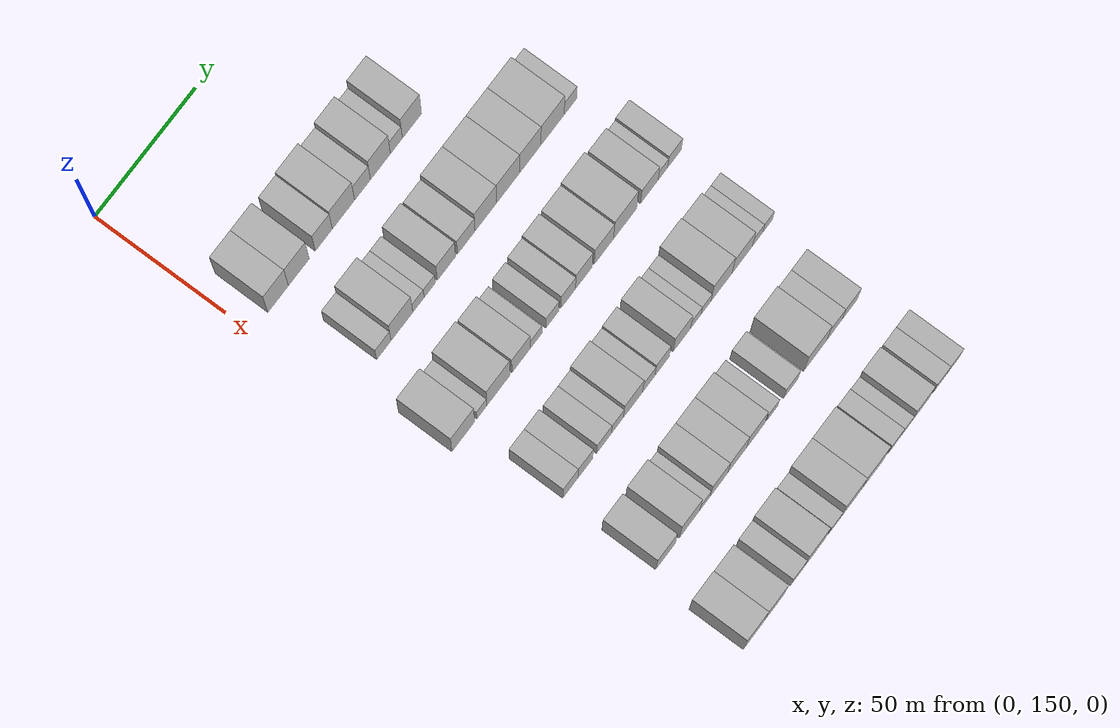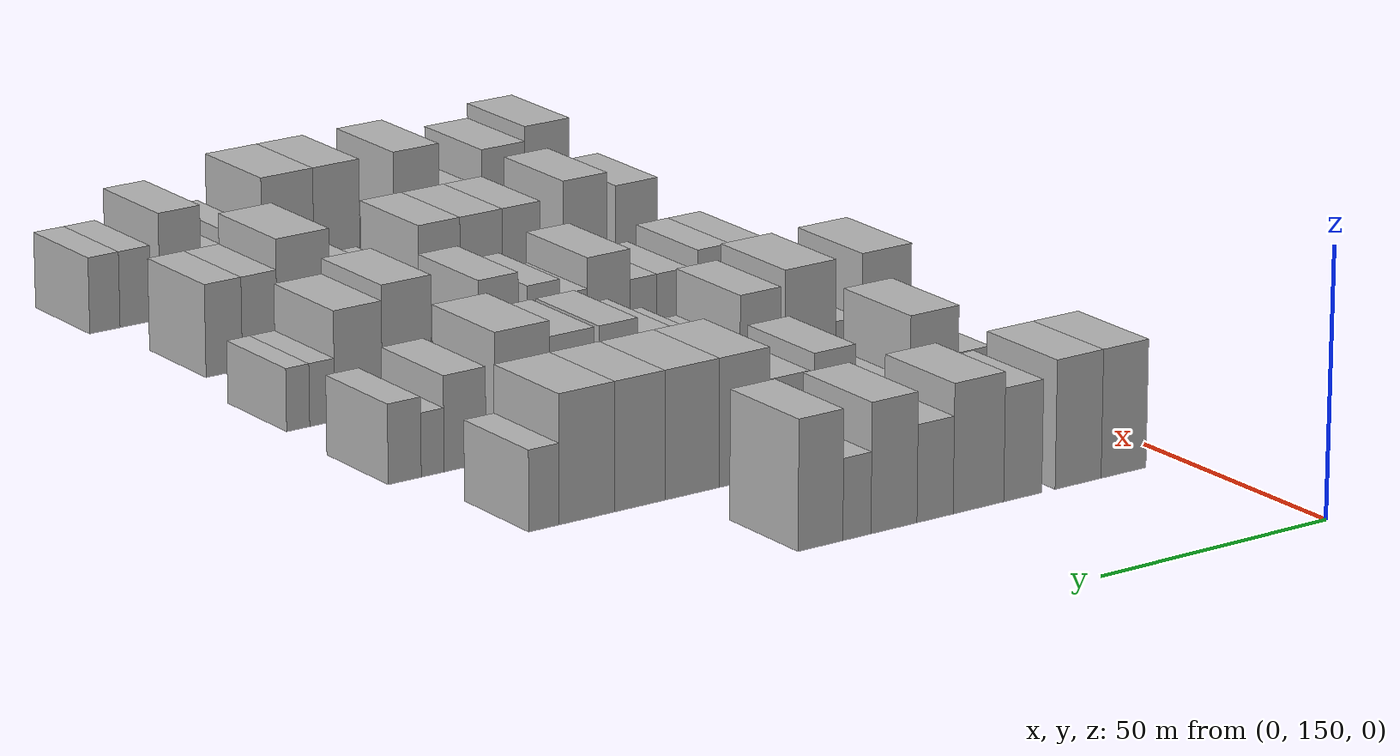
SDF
<sdf version="1.6">
 <world name="default">
  <model name="building_74">
   <static>1</static>
   <pose>50.0000 162.9056 0 0.000000 0.000000 0.000000</pose>
   <link name="link">
    <pose>0 0 12.00 0 0 0</pose>
    <collision name="collision"><geometry><box><size>20.0000 10.2120 24.0000</size></box></geometry></collision>
    <visual name="visual">
     <cast_shadows>0</cast_shadows>
     <geometry><box><size>20.0000 10.2120 24.0000</size></box></geometry>
     <material>
      <script>
       <uri>model://HANNAS_wall/materials/scripts</uri>
       <uri>model://HANNAS_wall/materials/textures</uri>
       <name>vrc/HANNAS_wall</name>
      </script>
     </material>
    </visual>
   </link>
  </model>
  <model name="building_75">
   <static>1</static>
   <pose>50.0000 173.1950 0 0.000000 0.000000 0.000000</pose>
   <link name="link">
    <pose>0 0 12.00 0 0 0</pose>
    <collision name="collision"><geometry><box><size>20.0000 10.3667 24.0000</size></box></geometry></collision>
    <visual name="visual">
     <cast_shadows>0</cast_shadows>
     <geometry><box><size>20.0000 10.3667 24.0000</size></box></geometry>
     <material>
      <script>
       <uri>model://HANNAS_wall/materials/scripts</uri>
       <uri>model://HANNAS_wall/materials/textures</uri>
       <name>vrc/HANNAS_wall</name>
      </script>
     </material>
    </visual>
   </link>
  </model>
  <model name="building_76">
   <static>1</static>
   <pose>50.0000 185.6249 0 0.000000 0.000000 0.000000</pose>
   <link name="link">
    <pose>0 0 10.50 0 0 0</pose>
    <collision name="collision"><geometry><box><size>20.0000 8.4931 21.0000</size></box></geometry></collision>
    <visual name="visual">
     <cast_shadows>0</cast_shadows>
     <geometry><box><size>20.0000 8.4931 21.0000</size></box></geometry>
     <material>
      <script>
       <uri>model://HANNAS_wall/materials/scripts</uri>
       <uri>model://HANNAS_wall/materials/textures</uri>
       <name>vrc/HANNAS_wall</name>
      </script>
     </material>
    </visual>
   </link>
  </model>
  <model name="building_77">
   <static>1</static>
   <pose>50.0000 195.4551 0 0.000000 0.000000 0.000000</pose>
   <link name="link">
    <pose>0 0 12.00 0 0 0</pose>
    <collision name="collision"><geometry><box><size>20.0000 11.1674 24.0000</size></box></geometry></collision>
    <visual name="visual">
     <cast_shadows>0</cast_shadows>
     <geometry><box><size>20.0000 11.1674 24.0000</size></box></geometry>
     <material>
      <script>
       <uri>model://HANNAS_wall/materials/scripts</uri>
       <uri>model://HANNAS_wall/materials/textures</uri>
       <name>vrc/HANNAS_wall</name>
      </script>
     </material>
    </visual>
   </link>
  </model>
  <model name="building_78">
   <static>1</static>
   <pose>50.0000 205.0063 0 0.000000 0.000000 0.000000</pose>
   <link name="link">
    <pose>0 0 9.00 0 0 0</pose>
    <collision name="collision"><geometry><box><size>20.0000 7.9349 18.0000</size></box></geometry></collision>
    <visual name="visual">
     <cast_shadows>0</cast_shadows>
     <geometry><box><size>20.0000 7.9349 18.0000</size></box></geometry>
     <material>
      <script>
       <uri>model://HANNAS_wall/materials/scripts</uri>
       <uri>model://HANNAS_wall/materials/textures</uri>
       <name>vrc/HANNAS_wall</name>
      </script>
     </material>
    </visual>
   </link>
  </model>
  <model name="building_79">
   <static>1</static>
   <pose>50.0000 213.9724 0 0.000000 0.000000 0.000000</pose>
   <link name="link">
    <pose>0 0 12.00 0 0 0</pose>
    <collision name="collision"><geometry><box><size>20.0000 9.9973 24.0000</size></box></geometry></collision>
    <visual name="visual">
     <cast_shadows>0</cast_shadows>
     <geometry><box><size>20.0000 9.9973 24.0000</size></box></geometry>
     <material>
      <script>
       <uri>model://HANNAS_wall/materials/scripts</uri>
       <uri>model://HANNAS_wall/materials/textures</uri>
       <name>vrc/HANNAS_wall</name>
      </script>
     </material>
    </visual>
   </link>
  </model>
  <model name="building_80">
   <static>1</static>
   <pose>50.0000 222.0026 0 0.000000 0.000000 0.000000</pose>
   <link name="link">
    <pose>0 0 7.50 0 0 0</pose>
    <collision name="collision"><geometry><box><size>20.0000 6.0632 15.0000</size></box></geometry></collision>
    <visual name="visual">
     <cast_shadows>0</cast_shadows>
     <geometry><box><size>20.0000 6.0632 15.0000</size></box></geometry>
     <material>
      <script>
       <uri>model://HANNAS_wall/materials/scripts</uri>
       <uri>model://HANNAS_wall/materials/textures</uri>
       <name>vrc/HANNAS_wall</name>
      </script>
     </material>
    </visual>
   </link>
  </model>
  <model name="building_81">
   <static>1</static>
   <pose>50.0000 229.8376 0 0.000000 0.000000 0.000000</pose>
   <link name="link">
    <pose>0 0 12.00 0 0 0</pose>
    <collision name="collision"><geometry><box><size>20.0000 9.6068 24.0000</size></box></geometry></collision>
    <visual name="visual">
     <cast_shadows>0</cast_shadows>
     <geometry><box><size>20.0000 9.6068 24.0000</size></box></geometry>
     <material>
      <script>
       <uri>model://HANNAS_wall/materials/scripts</uri>
       <uri>model://HANNAS_wall/materials/textures</uri>
       <name>vrc/HANNAS_wall</name>
      </script>
     </material>
    </visual>
   </link>
  </model>
  <model name="building_203">
   <static>1</static>
   <pose>85.0000 169.4824 0 0.000000 0.000000 0.000000</pose>
   <link name="link">
    <pose>0 0 7.50 0 0 0</pose>
    <collision name="collision"><geometry><box><size>20.0000 7.1732 15.0000</size></box></geometry></collision>
    <visual name="visual">
     <cast_shadows>0</cast_shadows>
     <geometry><box><size>20.0000 7.1732 15.0000</size></box></geometry>
     <material>
      <script>
       <uri>model://HANNAS_wall/materials/scripts</uri>
       <uri>model://HANNAS_wall/materials/textures</uri>
       <name>vrc/HANNAS_wall</name>
      </script>
     </material>
    </visual>
   </link>
  </model>
  <model name="building_204">
   <static>1</static>
   <pose>85.0000 178.4993 0 0.000000 0.000000 0.000000</pose>
   <link name="link">
    <pose>0 0 12.00 0 0 0</pose>
    <collision name="collision"><geometry><box><size>20.0000 10.8606 24.0000</size></box></geometry></collision>
    <visual name="visual">
     <cast_shadows>0</cast_shadows>
     <geometry><box><size>20.0000 10.8606 24.0000</size></box></geometry>
     <material>
      <script>
       <uri>model://HANNAS_wall/materials/scripts</uri>
       <uri>model://HANNAS_wall/materials/textures</uri>
       <name>vrc/HANNAS_wall</name>
      </script>
     </material>
    </visual>
   </link>
  </model>
  <model name="building_205">
   <static>1</static>
   <pose>85.0000 186.7805 0 0.000000 0.000000 0.000000</pose>
   <link name="link">
    <pose>0 0 6.00 0 0 0</pose>
    <collision name="collision"><geometry><box><size>20.0000 5.7017 12.0000</size></box></geometry></collision>
    <visual name="visual">
     <cast_shadows>0</cast_shadows>
     <geometry><box><size>20.0000 5.7017 12.0000</size></box></geometry>
     <material>
      <script>
       <uri>model://HANNAS_wall/materials/scripts</uri>
       <uri>model://HANNAS_wall/materials/textures</uri>
       <name>vrc/HANNAS_wall</name>
      </script>
     </material>
    </visual>
   </link>
  </model>
  <model name="building_206">
   <static>1</static>
   <pose>85.0000 192.4318 0 0.000000 0.000000 0.000000</pose>
   <link name="link">
    <pose>0 0 6.00 0 0 0</pose>
    <collision name="collision"><geometry><box><size>20.0000 5.6008 12.0000</size></box></geometry></collision>
    <visual name="visual">
     <cast_shadows>0</cast_shadows>
     <geometry><box><size>20.0000 5.6008 12.0000</size></box></geometry>
     <material>
      <script>
       <uri>model://HANNAS_wall/materials/scripts</uri>
       <uri>model://HANNAS_wall/materials/textures</uri>
       <name>vrc/HANNAS_wall</name>
      </script>
     </material>
    </visual>
   </link>
  </model>
  <model name="building_207">
   <static>1</static>
   <pose>85.0000 200.7996 0 0.000000 0.000000 0.000000</pose>
   <link name="link">
    <pose>0 0 10.50 0 0 0</pose>
    <collision name="collision"><geometry><box><size>20.0000 9.1348 21.0000</size></box></geometry></collision>
    <visual name="visual">
     <cast_shadows>0</cast_shadows>
     <geometry><box><size>20.0000 9.1348 21.0000</size></box></geometry>
     <material>
      <script>
       <uri>model://HANNAS_wall/materials/scripts</uri>
       <uri>model://HANNAS_wall/materials/textures</uri>
       <name>vrc/HANNAS_wall</name>
      </script>
     </material>
    </visual>
   </link>
  </model>
  <model name="building_208">
   <static>1</static>
   <pose>85.0000 210.7558 0 0.000000 0.000000 0.000000</pose>
   <link name="link">
    <pose>0 0 9.00 0 0 0</pose>
    <collision name="collision"><geometry><box><size>20.0000 8.7778 18.0000</size></box></geometry></collision>
    <visual name="visual">
     <cast_shadows>0</cast_shadows>
     <geometry><box><size>20.0000 8.7778 18.0000</size></box></geometry>
     <material>
      <script>
       <uri>model://HANNAS_wall/materials/scripts</uri>
       <uri>model://HANNAS_wall/materials/textures</uri>
       <name>vrc/HANNAS_wall</name>
      </script>
     </material>
    </visual>
   </link>
  </model>
  <model name="building_209">
   <static>1</static>
   <pose>85.0000 220.6032 0 0.000000 0.000000 0.000000</pose>
   <link name="link">
    <pose>0 0 12.00 0 0 0</pose>
    <collision name="collision"><geometry><box><size>20.0000 10.9170 24.0000</size></box></geometry></collision>
    <visual name="visual">
     <cast_shadows>0</cast_shadows>
     <geometry><box><size>20.0000 10.9170 24.0000</size></box></geometry>
     <material>
      <script>
       <uri>model://HANNAS_wall/materials/scripts</uri>
       <uri>model://HANNAS_wall/materials/textures</uri>
       <name>vrc/HANNAS_wall</name>
      </script>
     </material>
    </visual>
   </link>
  </model>
  <model name="building_210">
   <static>1</static>
   <pose>85.0000 231.9491 0 0.000000 0.000000 0.000000</pose>
   <link name="link">
    <pose>0 0 12.00 0 0 0</pose>
    <collision name="collision"><geometry><box><size>20.0000 11.7749 24.0000</size></box></geometry></collision>
    <visual name="visual">
     <cast_shadows>0</cast_shadows>
     <geometry><box><size>20.0000 11.7749 24.0000</size></box></geometry>
     <material>
      <script>
       <uri>model://HANNAS_wall/materials/scripts</uri>
       <uri>model://HANNAS_wall/materials/textures</uri>
       <name>vrc/HANNAS_wall</name>
      </script>
     </material>
    </visual>
   </link>
  </model>
  <model name="building_211">
   <static>1</static>
   <pose>85.0000 243.1697 0 0.000000 0.000000 0.000000</pose>
   <link name="link">
    <pose>0 0 12.00 0 0 0</pose>
    <collision name="collision"><geometry><box><size>20.0000 10.6662 24.0000</size></box></geometry></collision>
    <visual name="visual">
     <cast_shadows>0</cast_shadows>
     <geometry><box><size>20.0000 10.6662 24.0000</size></box></geometry>
     <material>
      <script>
       <uri>model://HANNAS_wall/materials/scripts</uri>
       <uri>model://HANNAS_wall/materials/textures</uri>
       <name>vrc/HANNAS_wall</name>
      </script>
     </material>
    </visual>
   </link>
  </model>
  <model name="building_212">
   <static>1</static>
   <pose>85.0000 254.4174 0 0.000000 0.000000 0.000000</pose>
   <link name="link">
    <pose>0 0 12.00 0 0 0</pose>
    <collision name="collision"><geometry><box><size>20.0000 11.8294 24.0000</size></box></geometry></collision>
    <visual name="visual">
     <cast_shadows>0</cast_shadows>
     <geometry><box><size>20.0000 11.8294 24.0000</size></box></geometry>
     <material>
      <script>
       <uri>model://HANNAS_wall/materials/scripts</uri>
       <uri>model://HANNAS_wall/materials/textures</uri>
       <name>vrc/HANNAS_wall</name>
      </script>
     </material>
    </visual>
   </link>
  </model>
  <model name="building_213">
   <static>1</static>
   <pose>85.0000 263.5270 0 0.000000 0.000000 0.000000</pose>
   <link name="link">
    <pose>0 0 7.50 0 0 0</pose>
    <collision name="collision"><geometry><box><size>20.0000 6.3899 15.0000</size></box></geometry></collision>
    <visual name="visual">
     <cast_shadows>0</cast_shadows>
     <geometry><box><size>20.0000 6.3899 15.0000</size></box></geometry>
     <material>
      <script>
       <uri>model://HANNAS_wall/materials/scripts</uri>
       <uri>model://HANNAS_wall/materials/textures</uri>
       <name>vrc/HANNAS_wall</name>
      </script>
     </material>
    </visual>
   </link>
  </model>
  <model name="building_334">
   <static>1</static>
   <pose>120.0000 162.7363 0 0.000000 0.000000 0.000000</pose>
   <link name="link">
    <pose>0 0 12.00 0 0 0</pose>
    <collision name="collision"><geometry><box><size>20.0000 11.3471 24.0000</size></box></geometry></collision>
    <visual name="visual">
     <cast_shadows>0</cast_shadows>
     <geometry><box><size>20.0000 11.3471 24.0000</size></box></geometry>
     <material>
      <script>
       <uri>model://HANNAS_wall/materials/scripts</uri>
       <uri>model://HANNAS_wall/materials/textures</uri>
       <name>vrc/HANNAS_wall</name>
      </script>
     </material>
    </visual>
   </link>
  </model>
  <model name="building_335">
   <static>1</static>
   <pose>120.0000 171.9515 0 0.000000 0.000000 0.000000</pose>
   <link name="link">
    <pose>0 0 6.00 0 0 0</pose>
    <collision name="collision"><geometry><box><size>20.0000 5.0831 12.0000</size></box></geometry></collision>
    <visual name="visual">
     <cast_shadows>0</cast_shadows>
     <geometry><box><size>20.0000 5.0831 12.0000</size></box></geometry>
     <material>
      <script>
       <uri>model://HANNAS_wall/materials/scripts</uri>
       <uri>model://HANNAS_wall/materials/textures</uri>
       <name>vrc/HANNAS_wall</name>
      </script>
     </material>
    </visual>
   </link>
  </model>
  <model name="building_336">
   <static>1</static>
   <pose>120.0000 180.2645 0 0.000000 0.000000 0.000000</pose>
   <link name="link">
    <pose>0 0 12.00 0 0 0</pose>
    <collision name="collision"><geometry><box><size>20.0000 11.5429 24.0000</size></box></geometry></collision>
    <visual name="visual">
     <cast_shadows>0</cast_shadows>
     <geometry><box><size>20.0000 11.5429 24.0000</size></box></geometry>
     <material>
      <script>
       <uri>model://HANNAS_wall/materials/scripts</uri>
       <uri>model://HANNAS_wall/materials/textures</uri>
       <name>vrc/HANNAS_wall</name>
      </script>
     </material>
    </visual>
   </link>
  </model>
  <model name="building_337">
   <static>1</static>
   <pose>120.0000 191.5954 0 0.000000 0.000000 0.000000</pose>
   <link name="link">
    <pose>0 0 10.50 0 0 0</pose>
    <collision name="collision"><geometry><box><size>20.0000 9.1189 21.0000</size></box></geometry></collision>
    <visual name="visual">
     <cast_shadows>0</cast_shadows>
     <geometry><box><size>20.0000 9.1189 21.0000</size></box></geometry>
     <material>
      <script>
       <uri>model://HANNAS_wall/materials/scripts</uri>
       <uri>model://HANNAS_wall/materials/textures</uri>
       <name>vrc/HANNAS_wall</name>
      </script>
     </material>
    </visual>
   </link>
  </model>
  <model name="building_338">
   <static>1</static>
   <pose>120.0000 199.1313 0 0.000000 0.000000 0.000000</pose>
   <link name="link">
    <pose>0 0 6.00 0 0 0</pose>
    <collision name="collision"><geometry><box><size>20.0000 5.9530 12.0000</size></box></geometry></collision>
    <visual name="visual">
     <cast_shadows>0</cast_shadows>
     <geometry><box><size>20.0000 5.9530 12.0000</size></box></geometry>
     <material>
      <script>
       <uri>model://HANNAS_wall/materials/scripts</uri>
       <uri>model://HANNAS_wall/materials/textures</uri>
       <name>vrc/HANNAS_wall</name>
      </script>
     </material>
    </visual>
   </link>
  </model>
  <model name="building_339">
   <static>1</static>
   <pose>120.0000 207.3835 0 0.000000 0.000000 0.000000</pose>
   <link name="link">
    <pose>0 0 7.50 0 0 0</pose>
    <collision name="collision"><geometry><box><size>20.0000 6.5513 15.0000</size></box></geometry></collision>
    <visual name="visual">
     <cast_shadows>0</cast_shadows>
     <geometry><box><size>20.0000 6.5513 15.0000</size></box></geometry>
     <material>
      <script>
       <uri>model://HANNAS_wall/materials/scripts</uri>
       <uri>model://HANNAS_wall/materials/textures</uri>
       <name>vrc/HANNAS_wall</name>
      </script>
     </material>
    </visual>
   </link>
  </model>
  <model name="building_340">
   <static>1</static>
   <pose>120.0000 215.3325 0 0.000000 0.000000 0.000000</pose>
   <link name="link">
    <pose>0 0 9.00 0 0 0</pose>
    <collision name="collision"><geometry><box><size>20.0000 7.3466 18.0000</size></box></geometry></collision>
    <visual name="visual">
     <cast_shadows>0</cast_shadows>
     <geometry><box><size>20.0000 7.3466 18.0000</size></box></geometry>
     <material>
      <script>
       <uri>model://HANNAS_wall/materials/scripts</uri>
       <uri>model://HANNAS_wall/materials/textures</uri>
       <name>vrc/HANNAS_wall</name>
      </script>
     </material>
    </visual>
   </link>
  </model>
  <model name="building_341">
   <static>1</static>
   <pose>120.0000 223.2400 0 0.000000 0.000000 0.000000</pose>
   <link name="link">
    <pose>0 0 10.50 0 0 0</pose>
    <collision name="collision"><geometry><box><size>20.0000 8.4684 21.0000</size></box></geometry></collision>
    <visual name="visual">
     <cast_shadows>0</cast_shadows>
     <geometry><box><size>20.0000 8.4684 21.0000</size></box></geometry>
     <material>
      <script>
       <uri>model://HANNAS_wall/materials/scripts</uri>
       <uri>model://HANNAS_wall/materials/textures</uri>
       <name>vrc/HANNAS_wall</name>
      </script>
     </material>
    </visual>
   </link>
  </model>
  <model name="building_342">
   <static>1</static>
   <pose>120.0000 233.3721 0 0.000000 0.000000 0.000000</pose>
   <link name="link">
    <pose>0 0 10.50 0 0 0</pose>
    <collision name="collision"><geometry><box><size>20.0000 9.7958 21.0000</size></box></geometry></collision>
    <visual name="visual">
     <cast_shadows>0</cast_shadows>
     <geometry><box><size>20.0000 9.7958 21.0000</size></box></geometry>
     <material>
      <script>
       <uri>model://HANNAS_wall/materials/scripts</uri>
       <uri>model://HANNAS_wall/materials/textures</uri>
       <name>vrc/HANNAS_wall</name>
      </script>
     </material>
    </visual>
   </link>
  </model>
  <model name="building_343">
   <static>1</static>
   <pose>120.0000 244.1609 0 0.000000 0.000000 0.000000</pose>
   <link name="link">
    <pose>0 0 12.00 0 0 0</pose>
    <collision name="collision"><geometry><box><size>20.0000 11.7820 24.0000</size></box></geometry></collision>
    <visual name="visual">
     <cast_shadows>0</cast_shadows>
     <geometry><box><size>20.0000 11.7820 24.0000</size></box></geometry>
     <material>
      <script>
       <uri>model://HANNAS_wall/materials/scripts</uri>
       <uri>model://HANNAS_wall/materials/textures</uri>
       <name>vrc/HANNAS_wall</name>
      </script>
     </material>
    </visual>
   </link>
  </model>
  <model name="building_344">
   <static>1</static>
   <pose>120.0000 256.5340 0 0.000000 0.000000 0.000000</pose>
   <link name="link">
    <pose>0 0 9.00 0 0 0</pose>
    <collision name="collision"><geometry><box><size>20.0000 8.9642 18.0000</size></box></geometry></collision>
    <visual name="visual">
     <cast_shadows>0</cast_shadows>
     <geometry><box><size>20.0000 8.9642 18.0000</size></box></geometry>
     <material>
      <script>
       <uri>model://HANNAS_wall/materials/scripts</uri>
       <uri>model://HANNAS_wall/materials/textures</uri>
       <name>vrc/HANNAS_wall</name>
      </script>
     </material>
    </visual>
   </link>
  </model>
  <model name="building_345">
   <static>1</static>
   <pose>120.0000 263.4423 0 0.000000 0.000000 0.000000</pose>
   <link name="link">
    <pose>0 0 6.00 0 0 0</pose>
    <collision name="collision"><geometry><box><size>20.0000 4.8524 12.0000</size></box></geometry></collision>
    <visual name="visual">
     <cast_shadows>0</cast_shadows>
     <geometry><box><size>20.0000 4.8524 12.0000</size></box></geometry>
     <material>
      <script>
       <uri>model://HANNAS_wall/materials/scripts</uri>
       <uri>model://HANNAS_wall/materials/textures</uri>
       <name>vrc/HANNAS_wall</name>
      </script>
     </material>
    </visual>
   </link>
  </model>
  <model name="building_346">
   <static>1</static>
   <pose>120.0000 269.3667 0 0.000000 0.000000 0.000000</pose>
   <link name="link">
    <pose>0 0 7.50 0 0 0</pose>
    <collision name="collision"><geometry><box><size>20.0000 6.9965 15.0000</size></box></geometry></collision>
    <visual name="visual">
     <cast_shadows>0</cast_shadows>
     <geometry><box><size>20.0000 6.9965 15.0000</size></box></geometry>
     <material>
      <script>
       <uri>model://HANNAS_wall/materials/scripts</uri>
       <uri>model://HANNAS_wall/materials/textures</uri>
       <name>vrc/HANNAS_wall</name>
      </script>
     </material>
    </visual>
   </link>
  </model>
  <model name="building_460">
   <static>1</static>
   <pose>155.0000 169.4163 0 0.000000 0.000000 0.000000</pose>
   <link name="link">
    <pose>0 0 9.00 0 0 0</pose>
    <collision name="collision"><geometry><box><size>20.0000 7.5330 18.0000</size></box></geometry></collision>
    <visual name="visual">
     <cast_shadows>0</cast_shadows>
     <geometry><box><size>20.0000 7.5330 18.0000</size></box></geometry>
     <material>
      <script>
       <uri>model://HANNAS_wall/materials/scripts</uri>
       <uri>model://HANNAS_wall/materials/textures</uri>
       <name>vrc/HANNAS_wall</name>
      </script>
     </material>
    </visual>
   </link>
  </model>
  <model name="building_461">
   <static>1</static>
   <pose>155.0000 176.8784 0 0.000000 0.000000 0.000000</pose>
   <link name="link">
    <pose>0 0 9.00 0 0 0</pose>
    <collision name="collision"><geometry><box><size>20.0000 7.3912 18.0000</size></box></geometry></collision>
    <visual name="visual">
     <cast_shadows>0</cast_shadows>
     <geometry><box><size>20.0000 7.3912 18.0000</size></box></geometry>
     <material>
      <script>
       <uri>model://HANNAS_wall/materials/scripts</uri>
       <uri>model://HANNAS_wall/materials/textures</uri>
       <name>vrc/HANNAS_wall</name>
      </script>
     </material>
    </visual>
   </link>
  </model>
  <model name="building_462">
   <static>1</static>
   <pose>155.0000 186.2751 0 0.000000 0.000000 0.000000</pose>
   <link name="link">
    <pose>0 0 7.50 0 0 0</pose>
    <collision name="collision"><geometry><box><size>20.0000 7.4022 15.0000</size></box></geometry></collision>
    <visual name="visual">
     <cast_shadows>0</cast_shadows>
     <geometry><box><size>20.0000 7.4022 15.0000</size></box></geometry>
     <material>
      <script>
       <uri>model://HANNAS_wall/materials/scripts</uri>
       <uri>model://HANNAS_wall/materials/textures</uri>
       <name>vrc/HANNAS_wall</name>
      </script>
     </material>
    </visual>
   </link>
  </model>
  <model name="building_463">
   <static>1</static>
   <pose>155.0000 192.9993 0 0.000000 0.000000 0.000000</pose>
   <link name="link">
    <pose>0 0 7.50 0 0 0</pose>
    <collision name="collision"><geometry><box><size>20.0000 6.0462 15.0000</size></box></geometry></collision>
    <visual name="visual">
     <cast_shadows>0</cast_shadows>
     <geometry><box><size>20.0000 6.0462 15.0000</size></box></geometry>
     <material>
      <script>
       <uri>model://HANNAS_wall/materials/scripts</uri>
       <uri>model://HANNAS_wall/materials/textures</uri>
       <name>vrc/HANNAS_wall</name>
      </script>
     </material>
    </visual>
   </link>
  </model>
  <model name="building_464">
   <static>1</static>
   <pose>155.0000 200.8443 0 0.000000 0.000000 0.000000</pose>
   <link name="link">
    <pose>0 0 10.50 0 0 0</pose>
    <collision name="collision"><geometry><box><size>20.0000 9.6439 21.0000</size></box></geometry></collision>
    <visual name="visual">
     <cast_shadows>0</cast_shadows>
     <geometry><box><size>20.0000 9.6439 21.0000</size></box></geometry>
     <material>
      <script>
       <uri>model://HANNAS_wall/materials/scripts</uri>
       <uri>model://HANNAS_wall/materials/textures</uri>
       <name>vrc/HANNAS_wall</name>
      </script>
     </material>
    </visual>
   </link>
  </model>
  <model name="building_465">
   <static>1</static>
   <pose>155.0000 208.7793 0 0.000000 0.000000 0.000000</pose>
   <link name="link">
    <pose>0 0 7.50 0 0 0</pose>
    <collision name="collision"><geometry><box><size>20.0000 6.2260 15.0000</size></box></geometry></collision>
    <visual name="visual">
     <cast_shadows>0</cast_shadows>
     <geometry><box><size>20.0000 6.2260 15.0000</size></box></geometry>
     <material>
      <script>
       <uri>model://HANNAS_wall/materials/scripts</uri>
       <uri>model://HANNAS_wall/materials/textures</uri>
       <name>vrc/HANNAS_wall</name>
      </script>
     </material>
    </visual>
   </link>
  </model>
  <model name="building_466">
   <static>1</static>
   <pose>155.0000 215.5296 0 0.000000 0.000000 0.000000</pose>
   <link name="link">
    <pose>0 0 9.00 0 0 0</pose>
    <collision name="collision"><geometry><box><size>20.0000 7.2746 18.0000</size></box></geometry></collision>
    <visual name="visual">
     <cast_shadows>0</cast_shadows>
     <geometry><box><size>20.0000 7.2746 18.0000</size></box></geometry>
     <material>
      <script>
       <uri>model://HANNAS_wall/materials/scripts</uri>
       <uri>model://HANNAS_wall/materials/textures</uri>
       <name>vrc/HANNAS_wall</name>
      </script>
     </material>
    </visual>
   </link>
  </model>
  <model name="building_467">
   <static>1</static>
   <pose>155.0000 225.5703 0 0.000000 0.000000 0.000000</pose>
   <link name="link">
    <pose>0 0 10.50 0 0 0</pose>
    <collision name="collision"><geometry><box><size>20.0000 8.8069 21.0000</size></box></geometry></collision>
    <visual name="visual">
     <cast_shadows>0</cast_shadows>
     <geometry><box><size>20.0000 8.8069 21.0000</size></box></geometry>
     <material>
      <script>
       <uri>model://HANNAS_wall/materials/scripts</uri>
       <uri>model://HANNAS_wall/materials/textures</uri>
       <name>vrc/HANNAS_wall</name>
      </script>
     </material>
    </visual>
   </link>
  </model>
  <model name="building_468">
   <static>1</static>
   <pose>155.0000 232.6606 0 0.000000 0.000000 0.000000</pose>
   <link name="link">
    <pose>0 0 6.00 0 0 0</pose>
    <collision name="collision"><geometry><box><size>20.0000 5.3738 12.0000</size></box></geometry></collision>
    <visual name="visual">
     <cast_shadows>0</cast_shadows>
     <geometry><box><size>20.0000 5.3738 12.0000</size></box></geometry>
     <material>
      <script>
       <uri>model://HANNAS_wall/materials/scripts</uri>
       <uri>model://HANNAS_wall/materials/textures</uri>
       <name>vrc/HANNAS_wall</name>
      </script>
     </material>
    </visual>
   </link>
  </model>
  <model name="building_469">
   <static>1</static>
   <pose>155.0000 237.8560 0 0.000000 0.000000 0.000000</pose>
   <link name="link">
    <pose>0 0 6.00 0 0 0</pose>
    <collision name="collision"><geometry><box><size>20.0000 5.0170 12.0000</size></box></geometry></collision>
    <visual name="visual">
     <cast_shadows>0</cast_shadows>
     <geometry><box><size>20.0000 5.0170 12.0000</size></box></geometry>
     <material>
      <script>
       <uri>model://HANNAS_wall/materials/scripts</uri>
       <uri>model://HANNAS_wall/materials/textures</uri>
       <name>vrc/HANNAS_wall</name>
      </script>
     </material>
    </visual>
   </link>
  </model>
  <model name="building_470">
   <static>1</static>
   <pose>155.0000 245.7634 0 0.000000 0.000000 0.000000</pose>
   <link name="link">
    <pose>0 0 12.00 0 0 0</pose>
    <collision name="collision"><geometry><box><size>20.0000 10.7979 24.0000</size></box></geometry></collision>
    <visual name="visual">
     <cast_shadows>0</cast_shadows>
     <geometry><box><size>20.0000 10.7979 24.0000</size></box></geometry>
     <material>
      <script>
       <uri>model://HANNAS_wall/materials/scripts</uri>
       <uri>model://HANNAS_wall/materials/textures</uri>
       <name>vrc/HANNAS_wall</name>
      </script>
     </material>
    </visual>
   </link>
  </model>
  <model name="building_471">
   <static>1</static>
   <pose>155.0000 256.3317 0 0.000000 0.000000 0.000000</pose>
   <link name="link">
    <pose>0 0 10.50 0 0 0</pose>
    <collision name="collision"><geometry><box><size>20.0000 10.3385 21.0000</size></box></geometry></collision>
    <visual name="visual">
     <cast_shadows>0</cast_shadows>
     <geometry><box><size>20.0000 10.3385 21.0000</size></box></geometry>
     <material>
      <script>
       <uri>model://HANNAS_wall/materials/scripts</uri>
       <uri>model://HANNAS_wall/materials/textures</uri>
       <name>vrc/HANNAS_wall</name>
      </script>
     </material>
    </visual>
   </link>
  </model>
  <model name="building_472">
   <static>1</static>
   <pose>155.0000 264.1941 0 0.000000 0.000000 0.000000</pose>
   <link name="link">
    <pose>0 0 6.00 0 0 0</pose>
    <collision name="collision"><geometry><box><size>20.0000 5.3864 12.0000</size></box></geometry></collision>
    <visual name="visual">
     <cast_shadows>0</cast_shadows>
     <geometry><box><size>20.0000 5.3864 12.0000</size></box></geometry>
     <material>
      <script>
       <uri>model://HANNAS_wall/materials/scripts</uri>
       <uri>model://HANNAS_wall/materials/textures</uri>
       <name>vrc/HANNAS_wall</name>
      </script>
     </material>
    </visual>
   </link>
  </model>
  <model name="building_473">
   <static>1</static>
   <pose>155.0000 269.3581 0 0.000000 0.000000 0.000000</pose>
   <link name="link">
    <pose>0 0 6.00 0 0 0</pose>
    <collision name="collision"><geometry><box><size>20.0000 4.9416 12.0000</size></box></geometry></collision>
    <visual name="visual">
     <cast_shadows>0</cast_shadows>
     <geometry><box><size>20.0000 4.9416 12.0000</size></box></geometry>
     <material>
      <script>
       <uri>model://HANNAS_wall/materials/scripts</uri>
       <uri>model://HANNAS_wall/materials/textures</uri>
       <name>vrc/HANNAS_wall</name>
      </script>
     </material>
    </visual>
   </link>
  </model>
  <model name="building_594">
   <static>1</static>
   <pose>190.0000 169.8896 0 0.000000 0.000000 0.000000</pose>
   <link name="link">
    <pose>0 0 10.50 0 0 0</pose>
    <collision name="collision"><geometry><box><size>20.0000 9.7949 21.0000</size></box></geometry></collision>
    <visual name="visual">
     <cast_shadows>0</cast_shadows>
     <geometry><box><size>20.0000 9.7949 21.0000</size></box></geometry>
     <material>
      <script>
       <uri>model://HANNAS_wall/materials/scripts</uri>
       <uri>model://HANNAS_wall/materials/textures</uri>
       <name>vrc/HANNAS_wall</name>
      </script>
     </material>
    </visual>
   </link>
  </model>
  <model name="building_595">
   <static>1</static>
   <pose>190.0000 181.8600 0 0.000000 0.000000 0.000000</pose>
   <link name="link">
    <pose>0 0 12.00 0 0 0</pose>
    <collision name="collision"><geometry><box><size>20.0000 10.1459 24.0000</size></box></geometry></collision>
    <visual name="visual">
     <cast_shadows>0</cast_shadows>
     <geometry><box><size>20.0000 10.1459 24.0000</size></box></geometry>
     <material>
      <script>
       <uri>model://HANNAS_wall/materials/scripts</uri>
       <uri>model://HANNAS_wall/materials/textures</uri>
       <name>vrc/HANNAS_wall</name>
      </script>
     </material>
    </visual>
   </link>
  </model>
  <model name="building_596">
   <static>1</static>
   <pose>190.0000 189.5963 0 0.000000 0.000000 0.000000</pose>
   <link name="link">
    <pose>0 0 6.00 0 0 0</pose>
    <collision name="collision"><geometry><box><size>20.0000 5.3267 12.0000</size></box></geometry></collision>
    <visual name="visual">
     <cast_shadows>0</cast_shadows>
     <geometry><box><size>20.0000 5.3267 12.0000</size></box></geometry>
     <material>
      <script>
       <uri>model://HANNAS_wall/materials/scripts</uri>
       <uri>model://HANNAS_wall/materials/textures</uri>
       <name>vrc/HANNAS_wall</name>
      </script>
     </material>
    </visual>
   </link>
  </model>
  <model name="building_597">
   <static>1</static>
   <pose>190.0000 196.6264 0 0.000000 0.000000 0.000000</pose>
   <link name="link">
    <pose>0 0 10.50 0 0 0</pose>
    <collision name="collision"><geometry><box><size>20.0000 8.7334 21.0000</size></box></geometry></collision>
    <visual name="visual">
     <cast_shadows>0</cast_shadows>
     <geometry><box><size>20.0000 8.7334 21.0000</size></box></geometry>
     <material>
      <script>
       <uri>model://HANNAS_wall/materials/scripts</uri>
       <uri>model://HANNAS_wall/materials/textures</uri>
       <name>vrc/HANNAS_wall</name>
      </script>
     </material>
    </visual>
   </link>
  </model>
  <model name="building_598">
   <static>1</static>
   <pose>190.0000 205.8083 0 0.000000 0.000000 0.000000</pose>
   <link name="link">
    <pose>0 0 10.50 0 0 0</pose>
    <collision name="collision"><geometry><box><size>20.0000 9.6305 21.0000</size></box></geometry></collision>
    <visual name="visual">
     <cast_shadows>0</cast_shadows>
     <geometry><box><size>20.0000 9.6305 21.0000</size></box></geometry>
     <material>
      <script>
       <uri>model://HANNAS_wall/materials/scripts</uri>
       <uri>model://HANNAS_wall/materials/textures</uri>
       <name>vrc/HANNAS_wall</name>
      </script>
     </material>
    </visual>
   </link>
  </model>
  <model name="building_599">
   <static>1</static>
   <pose>190.0000 215.3030 0 0.000000 0.000000 0.000000</pose>
   <link name="link">
    <pose>0 0 10.50 0 0 0</pose>
    <collision name="collision"><geometry><box><size>20.0000 9.3591 21.0000</size></box></geometry></collision>
    <visual name="visual">
     <cast_shadows>0</cast_shadows>
     <geometry><box><size>20.0000 9.3591 21.0000</size></box></geometry>
     <material>
      <script>
       <uri>model://HANNAS_wall/materials/scripts</uri>
       <uri>model://HANNAS_wall/materials/textures</uri>
       <name>vrc/HANNAS_wall</name>
      </script>
     </material>
    </visual>
   </link>
  </model>
  <model name="building_600">
   <static>1</static>
   <pose>190.0000 223.7791 0 0.000000 0.000000 0.000000</pose>
   <link name="link">
    <pose>0 0 6.00 0 0 0</pose>
    <collision name="collision"><geometry><box><size>20.0000 5.5930 12.0000</size></box></geometry></collision>
    <visual name="visual">
     <cast_shadows>0</cast_shadows>
     <geometry><box><size>20.0000 5.5930 12.0000</size></box></geometry>
     <material>
      <script>
       <uri>model://HANNAS_wall/materials/scripts</uri>
       <uri>model://HANNAS_wall/materials/textures</uri>
       <name>vrc/HANNAS_wall</name>
      </script>
     </material>
    </visual>
   </link>
  </model>
  <model name="building_601">
   <static>1</static>
   <pose>190.0000 233.2210 0 0.000000 0.000000 0.000000</pose>
   <link name="link">
    <pose>0 0 7.50 0 0 0</pose>
    <collision name="collision"><geometry><box><size>20.0000 7.2909 15.0000</size></box></geometry></collision>
    <visual name="visual">
     <cast_shadows>0</cast_shadows>
     <geometry><box><size>20.0000 7.2909 15.0000</size></box></geometry>
     <material>
      <script>
       <uri>model://HANNAS_wall/materials/scripts</uri>
       <uri>model://HANNAS_wall/materials/textures</uri>
       <name>vrc/HANNAS_wall</name>
      </script>
     </material>
    </visual>
   </link>
  </model>
  <model name="building_602">
   <static>1</static>
   <pose>190.0000 245.7137 0 0.000000 0.000000 0.000000</pose>
   <link name="link">
    <pose>0 0 12.00 0 0 0</pose>
    <collision name="collision"><geometry><box><size>20.0000 11.6943 24.0000</size></box></geometry></collision>
    <visual name="visual">
     <cast_shadows>0</cast_shadows>
     <geometry><box><size>20.0000 11.6943 24.0000</size></box></geometry>
     <material>
      <script>
       <uri>model://HANNAS_wall/materials/scripts</uri>
       <uri>model://HANNAS_wall/materials/textures</uri>
       <name>vrc/HANNAS_wall</name>
      </script>
     </material>
    </visual>
   </link>
  </model>
  <model name="building_603">
   <static>1</static>
   <pose>190.0000 255.4038 0 0.000000 0.000000 0.000000</pose>
   <link name="link">
    <pose>0 0 9.00 0 0 0</pose>
    <collision name="collision"><geometry><box><size>20.0000 7.6859 18.0000</size></box></geometry></collision>
    <visual name="visual">
     <cast_shadows>0</cast_shadows>
     <geometry><box><size>20.0000 7.6859 18.0000</size></box></geometry>
     <material>
      <script>
       <uri>model://HANNAS_wall/materials/scripts</uri>
       <uri>model://HANNAS_wall/materials/textures</uri>
       <name>vrc/HANNAS_wall</name>
      </script>
     </material>
    </visual>
   </link>
  </model>
  <model name="building_604">
   <static>1</static>
   <pose>190.0000 263.2141 0 0.000000 0.000000 0.000000</pose>
   <link name="link">
    <pose>0 0 9.00 0 0 0</pose>
    <collision name="collision"><geometry><box><size>20.0000 7.9346 18.0000</size></box></geometry></collision>
    <visual name="visual">
     <cast_shadows>0</cast_shadows>
     <geometry><box><size>20.0000 7.9346 18.0000</size></box></geometry>
     <material>
      <script>
       <uri>model://HANNAS_wall/materials/scripts</uri>
       <uri>model://HANNAS_wall/materials/textures</uri>
       <name>vrc/HANNAS_wall</name>
      </script>
     </material>
    </visual>
   </link>
  </model>
  <model name="building_720">
   <static>1</static>
   <pose>225.0000 166.6608 0 0.000000 0.000000 0.000000</pose>
   <link name="link">
    <pose>0 0 12.00 0 0 0</pose>
    <collision name="collision"><geometry><box><size>20.0000 10.5992 24.0000</size></box></geometry></collision>
    <visual name="visual">
     <cast_shadows>0</cast_shadows>
     <geometry><box><size>20.0000 10.5992 24.0000</size></box></geometry>
     <material>
      <script>
       <uri>model://HANNAS_wall/materials/scripts</uri>
       <uri>model://HANNAS_wall/materials/textures</uri>
       <name>vrc/HANNAS_wall</name>
      </script>
     </material>
    </visual>
   </link>
  </model>
  <model name="building_721">
   <static>1</static>
   <pose>225.0000 177.0384 0 0.000000 0.000000 0.000000</pose>
   <link name="link">
    <pose>0 0 10.50 0 0 0</pose>
    <collision name="collision"><geometry><box><size>20.0000 10.1559 21.0000</size></box></geometry></collision>
    <visual name="visual">
     <cast_shadows>0</cast_shadows>
     <geometry><box><size>20.0000 10.1559 21.0000</size></box></geometry>
     <material>
      <script>
       <uri>model://HANNAS_wall/materials/scripts</uri>
       <uri>model://HANNAS_wall/materials/textures</uri>
       <name>vrc/HANNAS_wall</name>
      </script>
     </material>
    </visual>
   </link>
  </model>
  <model name="building_722">
   <static>1</static>
   <pose>225.0000 188.6262 0 0.000000 0.000000 0.000000</pose>
   <link name="link">
    <pose>0 0 7.50 0 0 0</pose>
    <collision name="collision"><geometry><box><size>20.0000 7.0197 15.0000</size></box></geometry></collision>
    <visual name="visual">
     <cast_shadows>0</cast_shadows>
     <geometry><box><size>20.0000 7.0197 15.0000</size></box></geometry>
     <material>
      <script>
       <uri>model://HANNAS_wall/materials/scripts</uri>
       <uri>model://HANNAS_wall/materials/textures</uri>
       <name>vrc/HANNAS_wall</name>
      </script>
     </material>
    </visual>
   </link>
  </model>
  <model name="building_723">
   <static>1</static>
   <pose>225.0000 197.3774 0 0.000000 0.000000 0.000000</pose>
   <link name="link">
    <pose>0 0 12.00 0 0 0</pose>
    <collision name="collision"><geometry><box><size>20.0000 10.4828 24.0000</size></box></geometry></collision>
    <visual name="visual">
     <cast_shadows>0</cast_shadows>
     <geometry><box><size>20.0000 10.4828 24.0000</size></box></geometry>
     <material>
      <script>
       <uri>model://HANNAS_wall/materials/scripts</uri>
       <uri>model://HANNAS_wall/materials/textures</uri>
       <name>vrc/HANNAS_wall</name>
      </script>
     </material>
    </visual>
   </link>
  </model>
  <model name="building_724">
   <static>1</static>
   <pose>225.0000 207.5633 0 0.000000 0.000000 0.000000</pose>
   <link name="link">
    <pose>0 0 6.00 0 0 0</pose>
    <collision name="collision"><geometry><box><size>20.0000 5.8889 12.0000</size></box></geometry></collision>
    <visual name="visual">
     <cast_shadows>0</cast_shadows>
     <geometry><box><size>20.0000 5.8889 12.0000</size></box></geometry>
     <material>
      <script>
       <uri>model://HANNAS_wall/materials/scripts</uri>
       <uri>model://HANNAS_wall/materials/textures</uri>
       <name>vrc/HANNAS_wall</name>
      </script>
     </material>
    </visual>
   </link>
  </model>
  <model name="building_725">
   <static>1</static>
   <pose>225.0000 215.7621 0 0.000000 0.000000 0.000000</pose>
   <link name="link">
    <pose>0 0 12.00 0 0 0</pose>
    <collision name="collision"><geometry><box><size>20.0000 10.5088 24.0000</size></box></geometry></collision>
    <visual name="visual">
     <cast_shadows>0</cast_shadows>
     <geometry><box><size>20.0000 10.5088 24.0000</size></box></geometry>
     <material>
      <script>
       <uri>model://HANNAS_wall/materials/scripts</uri>
       <uri>model://HANNAS_wall/materials/textures</uri>
       <name>vrc/HANNAS_wall</name>
      </script>
     </material>
    </visual>
   </link>
  </model>
  <model name="building_726">
   <static>1</static>
   <pose>225.0000 226.8663 0 0.000000 0.000000 0.000000</pose>
   <link name="link">
    <pose>0 0 12.00 0 0 0</pose>
    <collision name="collision"><geometry><box><size>20.0000 11.6997 24.0000</size></box></geometry></collision>
    <visual name="visual">
     <cast_shadows>0</cast_shadows>
     <geometry><box><size>20.0000 11.6997 24.0000</size></box></geometry>
     <material>
      <script>
       <uri>model://HANNAS_wall/materials/scripts</uri>
       <uri>model://HANNAS_wall/materials/textures</uri>
       <name>vrc/HANNAS_wall</name>
      </script>
     </material>
    </visual>
   </link>
  </model>
  <model name="building_727">
   <static>1</static>
   <pose>225.0000 237.9494 0 0.000000 0.000000 0.000000</pose>
   <link name="link">
    <pose>0 0 7.50 0 0 0</pose>
    <collision name="collision"><geometry><box><size>20.0000 6.4666 15.0000</size></box></geometry></collision>
    <visual name="visual">
     <cast_shadows>0</cast_shadows>
     <geometry><box><size>20.0000 6.4666 15.0000</size></box></geometry>
     <material>
      <script>
       <uri>model://HANNAS_wall/materials/scripts</uri>
       <uri>model://HANNAS_wall/materials/textures</uri>
       <name>vrc/HANNAS_wall</name>
      </script>
     </material>
    </visual>
   </link>
  </model>
  <model name="building_728">
   <static>1</static>
   <pose>225.0000 243.8106 0 0.000000 0.000000 0.000000</pose>
   <link name="link">
    <pose>0 0 6.00 0 0 0</pose>
    <collision name="collision"><geometry><box><size>20.0000 5.2558 12.0000</size></box></geometry></collision>
    <visual name="visual">
     <cast_shadows>0</cast_shadows>
     <geometry><box><size>20.0000 5.2558 12.0000</size></box></geometry>
     <material>
      <script>
       <uri>model://HANNAS_wall/materials/scripts</uri>
       <uri>model://HANNAS_wall/materials/textures</uri>
       <name>vrc/HANNAS_wall</name>
      </script>
     </material>
    </visual>
   </link>
  </model>
  <model name="building_729">
   <static>1</static>
   <pose>225.0000 251.0465 0 0.000000 0.000000 0.000000</pose>
   <link name="link">
    <pose>0 0 10.50 0 0 0</pose>
    <collision name="collision"><geometry><box><size>20.0000 9.2160 21.0000</size></box></geometry></collision>
    <visual name="visual">
     <cast_shadows>0</cast_shadows>
     <geometry><box><size>20.0000 9.2160 21.0000</size></box></geometry>
     <material>
      <script>
       <uri>model://HANNAS_wall/materials/scripts</uri>
       <uri>model://HANNAS_wall/materials/textures</uri>
       <name>vrc/HANNAS_wall</name>
      </script>
     </material>
    </visual>
   </link>
  </model>
  <model name="building_730">
   <static>1</static>
   <pose>225.0000 261.0967 0 0.000000 0.000000 0.000000</pose>
   <link name="link">
    <pose>0 0 7.50 0 0 0</pose>
    <collision name="collision"><geometry><box><size>20.0000 6.8844 15.0000</size></box></geometry></collision>
    <visual name="visual">
     <cast_shadows>0</cast_shadows>
     <geometry><box><size>20.0000 6.8844 15.0000</size></box></geometry>
     <material>
      <script>
       <uri>model://HANNAS_wall/materials/scripts</uri>
       <uri>model://HANNAS_wall/materials/textures</uri>
       <name>vrc/HANNAS_wall</name>
      </script>
     </material>
    </visual>
   </link>
  </model>
  <model name="building_731">
   <static>1</static>
   <pose>225.0000 267.8661 0 0.000000 0.000000 0.000000</pose>
   <link name="link">
    <pose>0 0 7.50 0 0 0</pose>
    <collision name="collision"><geometry><box><size>20.0000 6.6543 15.0000</size></box></geometry></collision>
    <visual name="visual">
     <cast_shadows>0</cast_shadows>
     <geometry><box><size>20.0000 6.6543 15.0000</size></box></geometry>
     <material>
      <script>
       <uri>model://HANNAS_wall/materials/scripts</uri>
       <uri>model://HANNAS_wall/materials/textures</uri>
       <name>vrc/HANNAS_wall</name>
      </script>
     </material>
    </visual>
   </link>
  </model>
 </world>
</sdf>
